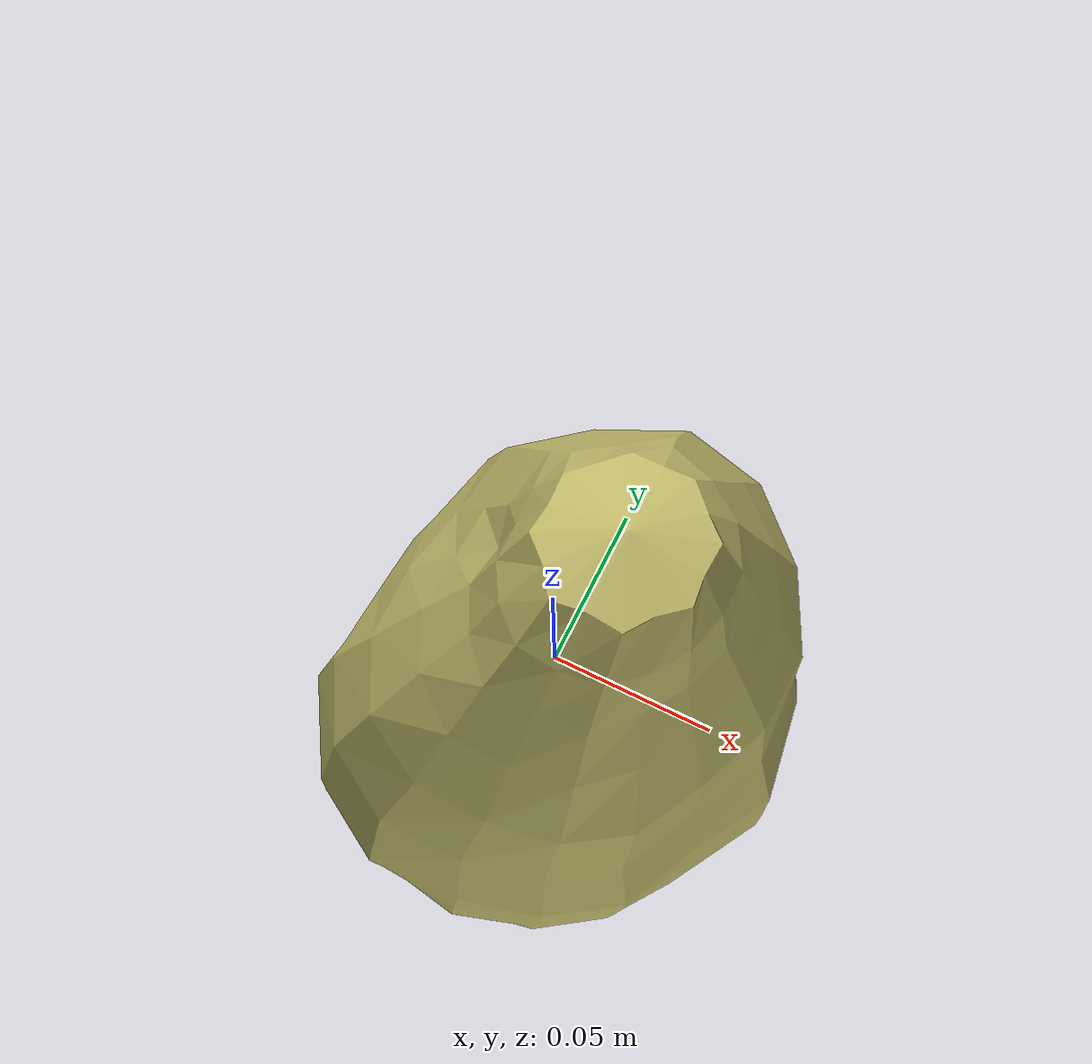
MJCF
<mujoco model="Lettuce_9">
  <compiler autolimits="true" boundmass="0.01" angle="radian"/>
  <default>
    <default class="/">
      <default class="__VISUAL_MJT__">
        <geom contype="0" conaffinity="0" group="0"/>
      </default>
      <default class="__STRUCTURAL_MJT__">
        <geom contype="8" conaffinity="15" group="4" friction="0.90000000000000002 0.90000000000000002 0.001" solref="0.025000000000000001 1" solimp="0.998 0.998 0.001"/>
      </default>
      <default class="__DYNAMIC_MJT__">
        <geom contype="1" conaffinity="15" group="4" friction="0.90000000000000002 0.90000000000000002 0.001" solref="0.025000000000000001 1" solimp="0.998 0.998 0.001"/>
      </default>
    </default>
  </default>
  <asset>
    <texture name="Lettuce1_Mat" type="2d" file="Lettuce1_AlbedoTransparency.png"/>
    <material name="material_Lettuce1_Mat" class="/" texture="Lettuce1_Mat" specular="0.5" shininess="0.5" rgba="0.9945233 1 0.60294119999999995 1"/>
    <mesh name="Lettuce_9_lettuce_a9" class="/" file="Lettuce_9_lettuce_a9/Lettuce_9_lettuce_a9.obj" scale="1 1 1"/>
  </asset>
  <worldbody>
    <body name="Lettuce_9">
      <joint name="Lettuce_9_free" class="/" type="free" pos="0 0 0" axis="0 0 1" stiffness="0" range="0 0" armature="0" damping="0.10000000000000001" frictionloss="0"/>
      <body name="Lettuce_9_lettuce_a9" pos="3.0000000000000001e-05 -0.00299 0.0056100000000000004" quat="1 0 0 0">
        <geom name="Lettuce_9_lettuce_a9" class="__VISUAL_MJT__" type="mesh" material="material_Lettuce1_Mat" shellinertia="true" mesh="Lettuce_9_lettuce_a9"/>
        <geom name="Lettuce_9_PrimitiveCollider_0" class="__DYNAMIC_MJT__" type="capsule" size="0.084463946521282196 0.0029457062482833862" rgba="0 1 0 1" pos="3.3416319638490677e-05 0.002988182008266449 -0.046093601733446121" quat="0.99895446298273716 1.4329928131603213e-06 -7.1122805068990504e-08 -0.045716308740020237"/>
        <geom name="Lettuce_9_PrimitiveCollider_1" class="__DYNAMIC_MJT__" type="capsule" size="0.038348205387592316 0.010454177856445312" rgba="0 1 0 1" pos="0.019300000742077827 -0.0036505311727523804 0.073475584387779236" quat="0.99999999999891198 1.4751396607739272e-06 0 0"/>
        <geom name="Lettuce_9_PrimitiveCollider_2" class="__DYNAMIC_MJT__" type="capsule" size="0.065289974212646484 0.0031912475824356079" rgba="0 1 0 1" pos="0.012300113216042519 0.0029882043600082397 0.01265011727809906" quat="0.99787885181640079 1.6015801650461442e-06 -1.0536711613634565e-07 -0.065098364764450731"/>
      </body>
    </body>
  </worldbody>
</mujoco>
